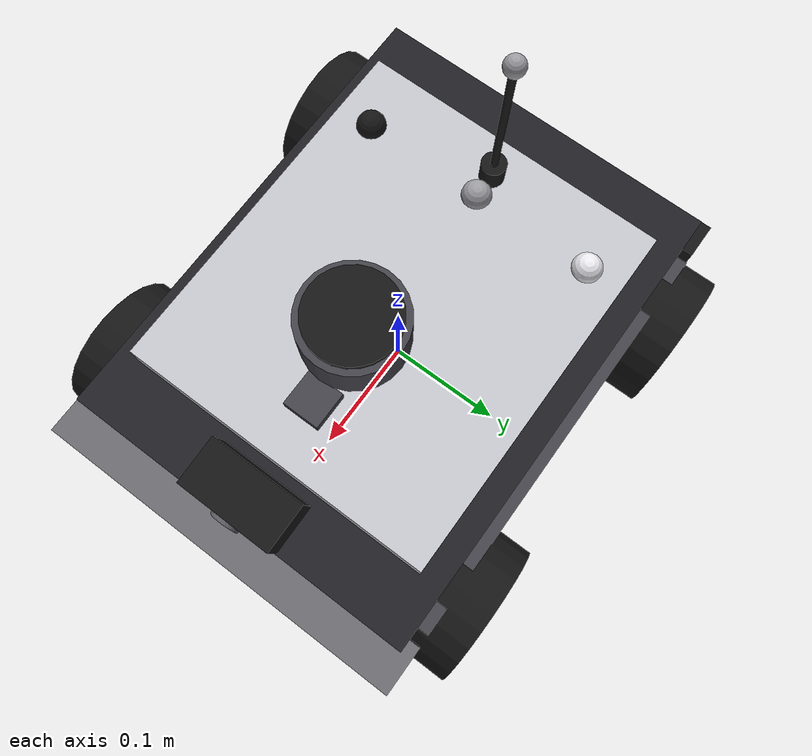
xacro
<?xml version="1.0"?>
<robot xmlns:xacro="http://www.ros.org/wiki/xacro" name="collector_bot">

  <!-- ═══════════════════ ARGUMENTS ═══════════════════ -->
  <xacro:arg name="robot_ns" default="robot_1"/>
  <xacro:property name="ns" value="$(arg robot_ns)"/>

  <!-- ═══════════════════ DIMENSIONS ═══════════════════ -->
  <xacro:property name="chassis_x" value="0.40"/>
  <xacro:property name="chassis_y" value="0.30"/>
  <xacro:property name="chassis_h" value="0.08"/>
  <xacro:property name="chassis_m" value="3.0"/>
  <xacro:property name="chassis_z" value="0.08"/>

  <!-- Top deck -->
  <xacro:property name="deck_x" value="0.30"/>
  <xacro:property name="deck_y" value="0.26"/>
  <xacro:property name="deck_h" value="0.03"/>

  <!-- Wheels -->
  <xacro:property name="wheel_r" value="0.06"/>
  <xacro:property name="wheel_w" value="0.04"/>
  <xacro:property name="wheel_m" value="0.2"/>
  <xacro:property name="wheel_x" value="0.14"/>
  <xacro:property name="wheel_y" value="0.17"/>

  <!-- ═══════════════════ MATERIALS (grayscale only) ═══════════════════ -->
  <material name="body">        <color rgba="0.12 0.12 0.14 1"/></material>
  <material name="deck">        <color rgba="0.75 0.75 0.78 1"/></material>
  <material name="bumper_grey"> <color rgba="0.4 0.4 0.42 1"/></material>
  <material name="dark_grey">   <color rgba="0.25 0.25 0.28 1"/></material>
  <material name="black">       <color rgba="0.08 0.08 0.08 1"/></material>
  <material name="rim">         <color rgba="0.7 0.7 0.75 1"/></material>
  <material name="light_grey">  <color rgba="0.6 0.6 0.62 1"/></material>
  <material name="mid_grey">    <color rgba="0.35 0.35 0.38 1"/></material>
  <material name="white_grey">  <color rgba="0.9 0.9 0.92 1"/></material>

  <!-- ═══════════════════ INERTIA MACROS ═══════════════════ -->
  <xacro:macro name="box_inertia" params="m x y z">
    <inertial><mass value="${m}"/>
      <inertia ixx="${m/12*(y*y+z*z)}" ixy="0" ixz="0"
               iyy="${m/12*(x*x+z*z)}" iyz="0"
               izz="${m/12*(x*x+y*y)}"/>
    </inertial>
  </xacro:macro>

  <xacro:macro name="sphere_inertia" params="m r">
    <inertial><mass value="${m}"/>
      <inertia ixx="${2*m*r*r/5}" ixy="0" ixz="0"
               iyy="${2*m*r*r/5}" iyz="0"
               izz="${2*m*r*r/5}"/>
    </inertial>
  </xacro:macro>

  <xacro:macro name="cyl_inertia" params="m r h">
    <inertial><mass value="${m}"/>
      <inertia ixx="${m/12*(3*r*r+h*h)}" ixy="0" ixz="0"
               iyy="${m/12*(3*r*r+h*h)}" iyz="0"
               izz="${m*r*r/2}"/>
    </inertial>
  </xacro:macro>

  <!-- ═══════════════════ BASE ═══════════════════ -->
  <link name="base_footprint"/>

  <joint name="base_joint" type="fixed">
    <parent link="base_footprint"/>
    <child link="base_link"/>
    <origin xyz="0 0 ${chassis_z}" rpy="0 0 0"/>
  </joint>

  <!-- Main chassis -->
  <link name="base_link">
    <visual>
      <geometry><box size="${chassis_x} ${chassis_y} ${chassis_h}"/></geometry>
      <material name="body"/>
    </visual>
    <collision>
      <geometry><box size="${chassis_x} ${chassis_y} ${chassis_h}"/></geometry>
    </collision>
    <xacro:box_inertia m="${chassis_m}" x="${chassis_x}" y="${chassis_y}" z="${chassis_h}"/>
  </link>
  <gazebo reference="base_link"><material>Gazebo/FlatBlack</material></gazebo>

  <!-- Front bumper -->
  <link name="front_bumper">
    <visual>
      <geometry><box size="0.04 ${chassis_y + 0.02} 0.05"/></geometry>
      <material name="bumper_grey"/>
    </visual>
    <xacro:box_inertia m="0.1" x="0.04" y="${chassis_y+0.02}" z="0.05"/>
  </link>
  <joint name="front_bumper_joint" type="fixed">
    <parent link="base_link"/>
    <child link="front_bumper"/>
    <origin xyz="${chassis_x/2 + 0.01} 0 -0.01" rpy="0 0 0"/>
  </joint>
  <gazebo reference="front_bumper"><material>Gazebo/Grey</material></gazebo>

  <!-- Rear bumper -->
  <link name="rear_bumper">
    <visual>
      <geometry><box size="0.03 ${chassis_y + 0.02} 0.04"/></geometry>
      <material name="black"/>
    </visual>
    <xacro:box_inertia m="0.1" x="0.03" y="${chassis_y+0.02}" z="0.04"/>
  </link>
  <joint name="rear_bumper_joint" type="fixed">
    <parent link="base_link"/>
    <child link="rear_bumper"/>
    <origin xyz="${-chassis_x/2 - 0.005} 0 -0.015" rpy="0 0 0"/>
  </joint>
  <gazebo reference="rear_bumper"><material>Gazebo/FlatBlack</material></gazebo>

  <!-- Top deck (light gray panel on top) -->
  <link name="top_deck">
    <visual>
      <geometry><box size="${deck_x} ${deck_y} ${deck_h}"/></geometry>
      <material name="deck"/>
    </visual>
    <xacro:box_inertia m="0.3" x="${deck_x}" y="${deck_y}" z="${deck_h}"/>
  </link>
  <joint name="top_deck_joint" type="fixed">
    <parent link="base_link"/>
    <child link="top_deck"/>
    <origin xyz="0 0 ${chassis_h/2 + deck_h/2}" rpy="0 0 0"/>
  </joint>
  <gazebo reference="top_deck"><material>Gazebo/Grey</material></gazebo>

  <!-- Side accent strips (dark gray) -->
  <xacro:macro name="side_strip" params="name y_sign">
    <link name="${name}">
      <visual>
        <geometry><box size="${chassis_x - 0.04} 0.01 0.015"/></geometry>
        <material name="dark_grey"/>
      </visual>
      <xacro:box_inertia m="0.02" x="${chassis_x-0.04}" y="0.01" z="0.015"/>
    </link>
    <joint name="${name}_joint" type="fixed">
      <parent link="base_link"/>
      <child link="${name}"/>
      <origin xyz="0 ${y_sign * (chassis_y/2 + 0.005)} 0" rpy="0 0 0"/>
    </joint>
    <gazebo reference="${name}"><material>Gazebo/DarkGrey</material></gazebo>
  </xacro:macro>
  <xacro:side_strip name="strip_left"  y_sign=" 1"/>
  <xacro:side_strip name="strip_right" y_sign="-1"/>

  <!-- Status indicators (grayscale shades) -->
  <xacro:macro name="led" params="name x y color gz_color">
    <link name="${name}">
      <visual><geometry><sphere radius="0.012"/></geometry>
        <material name="${color}"/></visual>
      <xacro:sphere_inertia m="0.002" r="0.012"/>
    </link>
    <joint name="${name}_joint" type="fixed">
      <parent link="top_deck"/>
      <child link="${name}"/>
      <origin xyz="${x} ${y} ${deck_h/2}" rpy="0 0 0"/>
    </joint>
    <gazebo reference="${name}"><material>Gazebo/${gz_color}</material></gazebo>
  </xacro:macro>
  <xacro:led name="led_1" x="-0.10" y=" 0.10" color="white_grey" gz_color="White"/>
  <xacro:led name="led_2" x="-0.10" y="-0.10" color="black"      gz_color="FlatBlack"/>
  <xacro:led name="led_3" x="-0.10" y="0.00"  color="light_grey" gz_color="Grey"/>

  <!-- Antenna -->
  <link name="antenna_base">
    <visual><geometry><cylinder radius="0.01" length="0.02"/></geometry>
      <material name="black"/></visual>
    <xacro:cyl_inertia m="0.01" r="0.01" h="0.02"/>
  </link>
  <joint name="antenna_base_joint" type="fixed">
    <parent link="top_deck"/>
    <child link="antenna_base"/>
    <origin xyz="-0.12 0 ${deck_h/2 + 0.01}" rpy="0 0 0"/>
  </joint>
  <gazebo reference="antenna_base"><material>Gazebo/FlatBlack</material></gazebo>

  <link name="antenna">
    <visual><geometry><cylinder radius="0.003" length="0.12"/></geometry>
      <material name="black"/></visual>
    <xacro:cyl_inertia m="0.005" r="0.003" h="0.12"/>
  </link>
  <joint name="antenna_joint" type="fixed">
    <parent link="antenna_base"/>
    <child link="antenna"/>
    <origin xyz="0 0 0.07" rpy="0 0 0"/>
  </joint>
  <gazebo reference="antenna"><material>Gazebo/FlatBlack</material></gazebo>

  <link name="antenna_tip">
    <visual><geometry><sphere radius="0.008"/></geometry>
      <material name="light_grey"/></visual>
    <xacro:sphere_inertia m="0.002" r="0.008"/>
  </link>
  <joint name="antenna_tip_joint" type="fixed">
    <parent link="antenna"/>
    <child link="antenna_tip"/>
    <origin xyz="0 0 0.065" rpy="0 0 0"/>
  </joint>
  <gazebo reference="antenna_tip"><material>Gazebo/Grey</material></gazebo>

  <!-- ═══════════════════ 4 × WHEELS ═══════════════════ -->
  <xacro:macro name="wheel" params="name wx wy">
    <link name="${name}">
      <visual>
        <origin xyz="0 0 0" rpy="${pi/2} 0 0"/>
        <geometry><cylinder radius="${wheel_r}" length="${wheel_w}"/></geometry>
        <material name="black"/>
      </visual>
      <!-- Rim detail -->
      <visual>
        <origin xyz="0 0 0" rpy="${pi/2} 0 0"/>
        <geometry><cylinder radius="${wheel_r * 0.55}" length="${wheel_w + 0.002}"/></geometry>
        <material name="rim"/>
      </visual>
      <collision>
        <origin xyz="0 0 0" rpy="${pi/2} 0 0"/>
        <geometry><sphere radius="${wheel_r}"/></geometry>
      </collision>
      <xacro:cyl_inertia m="${wheel_m}" r="${wheel_r}" h="${wheel_w}"/>
    </link>
    <joint name="${name}_joint" type="fixed">
      <parent link="base_link"/>
      <child link="${name}"/>
      <origin xyz="${wx} ${wy} ${-chassis_h/2 - 0.01}" rpy="0 0 0"/>
    </joint>
    <gazebo reference="${name}">
      <material>Gazebo/FlatBlack</material>
      <mu1>0.0</mu1><mu2>0.0</mu2>
      <kp>1000000.0</kp><kd>1.0</kd>
    </gazebo>
  </xacro:macro>

  <xacro:wheel name="wheel_fl" wx="${ wheel_x}" wy="${ wheel_y}"/>
  <xacro:wheel name="wheel_fr" wx="${ wheel_x}" wy="${-wheel_y}"/>
  <xacro:wheel name="wheel_rl" wx="${-wheel_x}" wy="${ wheel_y}"/>
  <xacro:wheel name="wheel_rr" wx="${-wheel_x}" wy="${-wheel_y}"/>

  <!-- ═══════════════════ LIDAR (grayscale) ═══════════════════ -->
  <link name="lidar_mount">
    <visual><geometry><cylinder radius="0.025" length="0.03"/></geometry>
      <material name="black"/></visual>
    <xacro:cyl_inertia m="0.05" r="0.025" h="0.03"/>
  </link>
  <joint name="lidar_mount_joint" type="fixed">
    <parent link="top_deck"/>
    <child link="lidar_mount"/>
    <origin xyz="0.05 0 ${deck_h/2 + 0.015}" rpy="0 0 0"/>
  </joint>
  <gazebo reference="lidar_mount"><material>Gazebo/FlatBlack</material></gazebo>

  <link name="lidar_link">
    <visual>
      <geometry><cylinder radius="0.04" length="0.04"/></geometry>
      <material name="dark_grey"/>
    </visual>
    <visual>
      <origin xyz="0 0 0.022" rpy="0 0 0"/>
      <geometry><cylinder radius="0.035" length="0.005"/></geometry>
      <material name="black"/>
    </visual>
    <collision><geometry><cylinder radius="0.04" length="0.04"/></geometry></collision>
    <xacro:cyl_inertia m="0.1" r="0.04" h="0.04"/>
  </link>
  <joint name="lidar_joint" type="fixed">
    <parent link="lidar_mount"/>
    <child link="lidar_link"/>
    <origin xyz="0 0 0.035" rpy="0 0 0"/>
  </joint>

  <gazebo reference="lidar_link">
    <material>Gazebo/DarkGrey</material>
    <sensor type="ray" name="lidar">
      <pose>0 0 0 0 0 0</pose>
      <visualize>false</visualize>
      <update_rate>10</update_rate>
      <ray>
        <scan><horizontal>
          <samples>360</samples><resolution>1</resolution>
          <min_angle>-3.14159</min_angle><max_angle>3.14159</max_angle>
        </horizontal></scan>
        <range><min>0.12</min><max>5.0</max><resolution>0.01</resolution></range>
        <noise><type>gaussian</type><mean>0</mean><stddev>0.008</stddev></noise>
      </ray>
      <plugin name="lidar_plugin" filename="libgazebo_ros_ray_sensor.so">
        <ros><namespace>${ns}</namespace>
          <remapping>~/out:=scan</remapping></ros>
        <output_type>sensor_msgs/LaserScan</output_type>
        <frame_name>${ns}/lidar_link</frame_name>
      </plugin>
    </sensor>
  </gazebo>

  <!-- ═══════════════════ CAMERA (grayscale housing) ═══════════════════ -->
  <link name="camera_link">
    <!-- housing -->
    <visual>
      <geometry><box size="0.04 0.08 0.035"/></geometry>
      <material name="black"/>
    </visual>
    <!-- lens (mid gray) -->
    <visual>
      <origin xyz="0.021 0 0" rpy="0 ${pi/2} 0"/>
      <geometry><cylinder radius="0.012" length="0.006"/></geometry>
      <material name="mid_grey"/>
    </visual>
    <collision><geometry><box size="0.04 0.08 0.035"/></geometry></collision>
    <xacro:box_inertia m="0.08" x="0.04" y="0.08" z="0.035"/>
  </link>
  <joint name="camera_joint" type="fixed">
    <parent link="base_link"/>
    <child link="camera_link"/>
    <origin xyz="${chassis_x/2 - 0.02} 0 ${chassis_h/2 + 0.02}" rpy="0 0.1 0"/>
  </joint>
  <gazebo reference="camera_link"><material>Gazebo/FlatBlack</material></gazebo>

  <link name="camera_optical_link"/>
  <joint name="camera_optical_joint" type="fixed">
    <parent link="camera_link"/>
    <child link="camera_optical_link"/>
    <origin xyz="0 0 0" rpy="${-pi/2} 0 ${-pi/2}"/>
  </joint>

  <gazebo reference="camera_link">
    <sensor type="camera" name="rgb_camera">
      <update_rate>10</update_rate>
      <camera name="camera">
        <horizontal_fov>1.2</horizontal_fov>
        <image><width>640</width><height>480</height><format>R8G8B8</format></image>
        <clip><near>0.05</near><far>8.0</far></clip>
        <noise><type>gaussian</type><mean>0</mean><stddev>0.005</stddev></noise>
      </camera>
      <plugin name="camera_plugin" filename="libgazebo_ros_camera.so">
        <ros><namespace>${ns}</namespace></ros>
        <camera_name>camera</camera_name>
        <frame_name>${ns}/camera_optical_link</frame_name>
      </plugin>
    </sensor>
  </gazebo>

  <!-- ═══════════════════ IMU (dark grey) ═══════════════════ -->
  <link name="imu_link">
    <visual><geometry><box size="0.03 0.03 0.01"/></geometry>
      <material name="dark_grey"/></visual>
    <xacro:box_inertia m="0.01" x="0.03" y="0.03" z="0.01"/>
  </link>
  <joint name="imu_joint" type="fixed">
    <parent link="top_deck"/>
    <child link="imu_link"/>
    <origin xyz="0.10 0 ${deck_h/2 + 0.005}" rpy="0 0 0"/>
  </joint>
  <gazebo reference="imu_link"><material>Gazebo/DarkGrey</material></gazebo>

  <gazebo reference="imu_link">
    <sensor type="imu" name="imu_sensor">
      <update_rate>50</update_rate>
      <plugin name="imu_plugin" filename="libgazebo_ros_imu_sensor.so">
        <ros><namespace>${ns}</namespace>
          <remapping>~/out:=imu</remapping></ros>
        <frame_name>${ns}/imu_link</frame_name>
        <initial_orientation_as_reference>false</initial_orientation_as_reference>
      </plugin>
    </sensor>
  </gazebo>

  <!-- ═══════════════════ PLANAR MOVE ═══════════════════ -->
  <gazebo>
    <plugin name="planar_move" filename="libgazebo_ros_planar_move.so">
      <ros><namespace>${ns}</namespace></ros>
      <command_topic>cmd_vel</command_topic>
      <odometry_topic>odom</odometry_topic>
      <odometry_frame>${ns}/odom</odometry_frame>
      <robot_base_frame>${ns}/base_footprint</robot_base_frame>
      <odometry_rate>30.0</odometry_rate>
      <publish_odom>true</publish_odom>
      <publish_odom_tf>true</publish_odom_tf>
    </plugin>
  </gazebo>

</robot>
